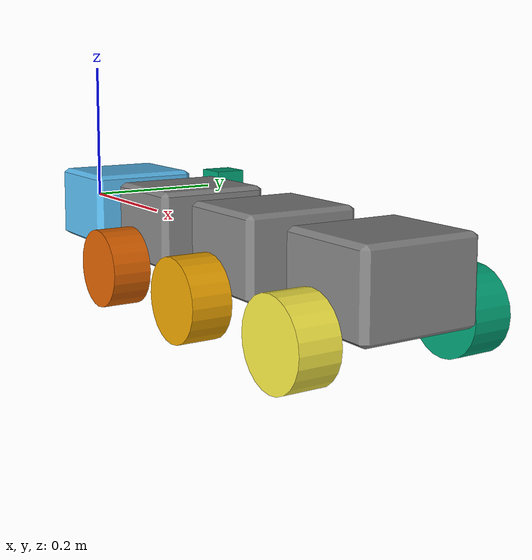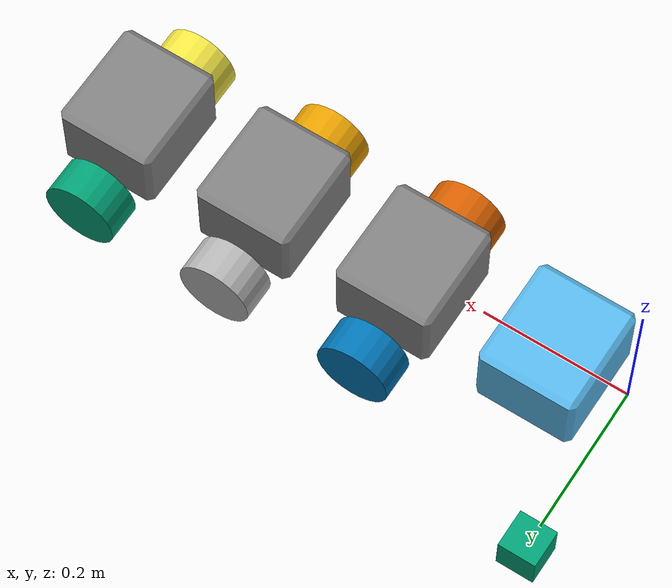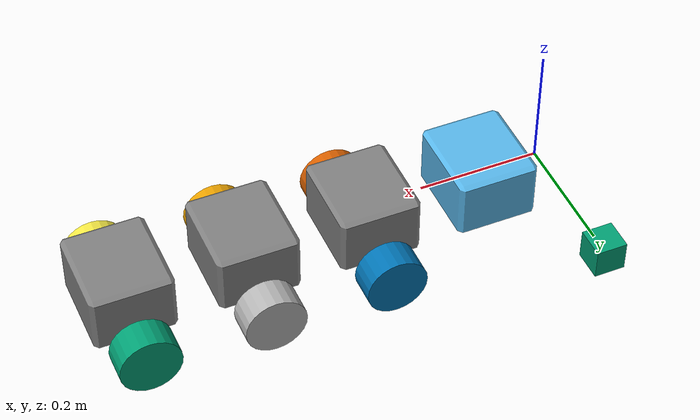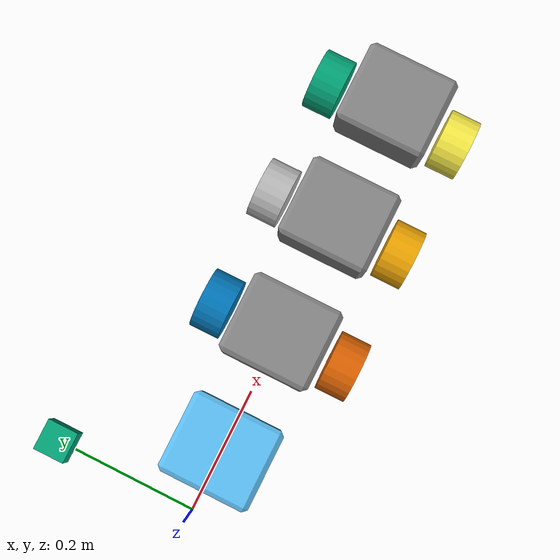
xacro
<?xml version="1.0"?>
<robot name="testbot" xmlns:xacro="http://www.ros.org/wiki/xacro">

<!-- http://answers.ros.org/question/38956/pass-parameters-to-xacro-in-launch-file/ -->
<xacro:property name="pi" value="3.1415926535897931" />
<xacro:property name="seg_length" value="0.2" />
<xacro:property name="seg_width" value="0.15" />
<xacro:property name="seg_height" value="0.1" />

<xacro:property name="cyl_div" value="4.0" />

<!--
    Wheel
    =====
 -->
<xacro:macro name="wheel" params="dir parent postfix length width height">
<!-- the name doesn't actually do anything, was hoping maybe it would
       allow multiple visuals within the same link -->
  <link name="link_wheel_${postfix}">
    <visual>
      <!-- use this when using the cylinder primitive, the mesh doesn't align -->
      <origin xyz="0 0 0" rpy="${pi/2} 0 0" />
        <geometry>
          <cylinder length="${length/4}" radius="${length/4}" />
          <!-- TODO rotate the mesh so it aligns with the cylinder -->
          <!--mesh filename="package://testbot_description/meshes/cylinder.dae" scale="${length/4} ${length/8} ${length/4}" /-->
        </geometry>
    </visual>

    <collision>
      <origin xyz="0 0 0" rpy="${pi/2} 0 0" />
      <geometry>
        <cylinder length="${length/4}" radius="${length/4}" />
      </geometry>
    </collision>

    <inertial>
        <origin xyz="0 0 0" rpy="0 0 0" />
        <mass value="2" />
        <inertia
          ixx="1.0" ixy="0.0" ixz="0.0"
          iyy="1.0" iyz="0.0"
          izz="1.0" />
    </inertial>

  </link>

  <!-- wheel axle -->
  <joint name="joint_axle_${postfix}" type="continuous">
        <parent link="${parent}" />
        <child link="link_wheel_${postfix}" />
        <origin xyz="${length/2} ${dir * length/1.8} ${-length/4}" rpy="0 0 0" />
        <axis xyz="0 1 0" />
        <limit effort="1000.0" velocity="0.5" />
  </joint>

</xacro:macro>
<!--
  end wheel
  -->

<!--
  Segment
  =======
-->
<xacro:macro name="segment" params="parent postfix length width height">
  <!-- the segment -->
  <link name="link_${postfix}">
    <visual>
        <origin xyz="${length/2} 0 0" rpy="0 0 0" />
        <geometry>
          <!--box size="${length} ${width} ${height}" /-->
          <mesh filename="package://testbot_description/meshes/cube.dae"
              scale="${length/3} ${width/2} ${height/2}" />
        </geometry>
        <material name="grey_${postfix}">
          <color rgba="0.5 0.5 0.5 1" />
        </material>
    </visual>

    <collision>
      <origin xyz="${length/2} 0 0" rpy="0 0 0" />
      <geometry>
        <box size="${length/2} ${width/2} ${height/2}" />
      </geometry>
    </collision>

    <inertial>
        <origin xyz="${length/2} 0 0" rpy="0 0 0" />
        <mass value="20.0" />
        <inertia
          ixx="1.0" ixy="0.0" ixz="0.0"
          iyy="1.0" iyz="0.0"
          izz="1.0" />
    </inertial>

  </link>

  <gazebo reference="link_${postfix}">
    <mu1>0.2</mu1>
    <mu2>0.2</mu2>
  </gazebo>

  <!-- This link is just here to provide a visual for the joint -->
  <xacro:if value="false">
  <link name="link_jointviz_${postfix}">
    <visual>
        <origin xyz="0 0 0" rpy="${pi/2} 0 0" />
        <geometry>
          <!--box size="${length} ${width} ${height}" /-->
          <mesh filename="package://testbot_description/meshes/cylinder.dae" scale="${length/cyl_div} ${0.5 * length/cyl_div} ${length/cyl_div}" />
        </geometry>
        <material name="grey_${postfix}">
          <color rgba="0.3 0.3 0.3 1" />
        </material>
    </visual>

    <!-- Do I need this? Wouldn't want thin things to fall between segments -->
    <collision>
      <origin xyz="0 0 0" rpy="0 0 0" />
      <geometry>
        <cylinder length="${0.5 * length/cyl_div}" radius="${length/cyl_div}" />
      </geometry>
    </collision>

    <!-- Do I need this? -->

  </link>

  <!-- this is just for visual purpose -->
  <joint name="joint_linkviz_${postfix}" type="fixed">
        <parent link="${parent}" />
        <child link="link_jointviz_${postfix}" />
        <origin xyz="${length} 0 0" rpy="0 0 0" />
        <axis xyz="0 0 1" />
  </joint>
  </xacro:if>

  <!-- this is a functional joint between segments -->
  <joint name="joint_seg_${postfix}" type="revolute">
        <parent link="${parent}" />
        <child link="link_${postfix}" />
        <origin xyz="${length} 0 0" rpy="0 0 0" />
        <axis xyz="0 0 1" />
        <limit effort="1000.0" lower="-0.5" upper="0.5" velocity="0.5" />
        <dynamics damping="0.5" />
  </joint>

  <transmission name="tran_joint_seg_${postfix}">
    <type>transmission_interface/SimpleTransmission</type>
    <joint name="joint_seg_${postfix}" />
    <actuator name="motor_seg_${postfix}">
      <hardwareInterface>EffortJointInterface</hardwareInterface>
      <mechanicalReduction>1</mechanicalReduction>
    </actuator>
  </transmission>

  <!-- wheels -->
  <xacro:if value="true">
  <xacro:wheel parent="link_${postfix}" postfix="right_${postfix}" dir="1.0" length="${length}" width="${width}" height="${height}"  />
  <xacro:wheel parent="link_${postfix}" postfix="left_${postfix}" dir="-1.0" length="${length}" width="${width}" height="${height}"  />
  </xacro:if>

</xacro:macro>
<!--
  End segment section
  ===================
-->

<gazebo>
  <plugin name="gazebo_ros_control" filename="libgazebo_ros_control.so">
    <!-- will default to robot name -->
    <robotNamespace>/testbot</robotNamespace>
    <!-- TBD rename this later -->
    <robotParam>/robot_description</robotParam>
  </plugin>
</gazebo>

<link name="base_link"/>

<link name="head">
    <visual>
        <origin xyz="${seg_length/2} 0 0" rpy="0 0 0" />
        <geometry>
          <mesh filename="package://testbot_description/meshes/cube.dae"
              scale="${seg_length/3} ${seg_width/2} ${seg_height/2}" />
          <!--mesh filename="package://testbot_description/meshes/cylinder.dae" scale="${seg_length/3} ${seg_length/6} ${seg_length/3}" /-->
        </geometry>
    </visual>

    <collision>
      <origin xyz="${seg_length/2} 0 0" rpy="0 0 0" />
      <geometry>
          <mesh filename="package://testbot_description/meshes/cube.dae"
              scale="${seg_length/3} ${seg_width/2} ${seg_height/2}" />
        <!--cylinder length="${seg_length/6}" radius="${seg_length/3}" /-->
      </geometry>
    </collision>

    <inertial>
        <origin xyz="${seg_length/2} 0 0" rpy="0 0 0" />
        <mass value="1" />
        <inertia
          ixx="1.0" ixy="0.0" ixz="0.0"
          iyy="1.0" iyz="0.0"
          izz="1.0" />
    </inertial>

</link>

  <joint name="joint_base_head" type="fixed">
        <parent link="base_link" />
        <child link="head" />
        <origin xyz="0 0 0" rpy="0 0 0" />
  </joint>

<!-- this one doesn't work correctly because it is attached to a fixed link -->
<gazebo reference="head">
  <projector name="projector_test_head">
    <!-- none of the translations or rotations applied here have any effect -->
    <pose>${seg_length/2} 0 0 1.57 0 0</pose>
    <texture>test_pattern.png</texture>
    <fov>0.95</fov>
    <near_clip>0.1</near_clip>
    <far_clip>10.0</far_clip>
  </projector>
</gazebo>

<!-- try putting a projector onto another link -->
<joint name="joint_projector_test_1" type="revolute">
  <parent link="head" />
  <child link="link_projector_test_1" />
  <origin xyz="0 0.23 0" rpy="0 0 0" />
  <axis xyz="0 1 0" />
  <limit effort="1000.0" upper="0.0001" lower="-0.0001" velocity="0.5" />
</joint>
<!-- this works fine because it is attached to a revolute jointed link-->
<link name="link_projector_test_1">
    <visual>
      <origin xyz="0 0 0" rpy="0 0 0" />
      <geometry>
        <box size="0.05 0.05 0.05"/>
      </geometry>
    </visual>

    <collision>
      <origin xyz="0 0 0" rpy="0 0 0" />
      <geometry>
        <box size="0.05 0.05 0.05"/>
      </geometry>
    </collision>

    <inertial>
        <origin xyz="0 0 0" rpy="0 0 0" />
        <mass value="1" />
        <inertia
          ixx="1.0" ixy="0.0" ixz="0.0"
          iyy="1.0" iyz="0.0"
          izz="1.0" />
    </inertial>
</link>

<gazebo reference="link_projector_test_1">
  <projector name="projector_test_1">
    <!-- setting the pose will produce glitches even when attached to a revolute joint -->
    <pose>0 0 0 0 1.57 0</pose>
    <texture>test_pattern.png</texture>
    <fov>0.95</fov>
    <near_clip>0.1</near_clip>
    <far_clip>10.0</far_clip>
  </projector>
</gazebo>

<xacro:segment parent="head" postfix="1" length="${seg_length}" width="${seg_width}" height="${seg_height}" />
<xacro:segment parent="link_1" postfix="2" length="${seg_length}" width="${seg_width}" height="${seg_height}" />
<xacro:segment parent="link_2" postfix="3" length="${seg_length}" width="${seg_width}" height="${seg_height}" />

</robot>
